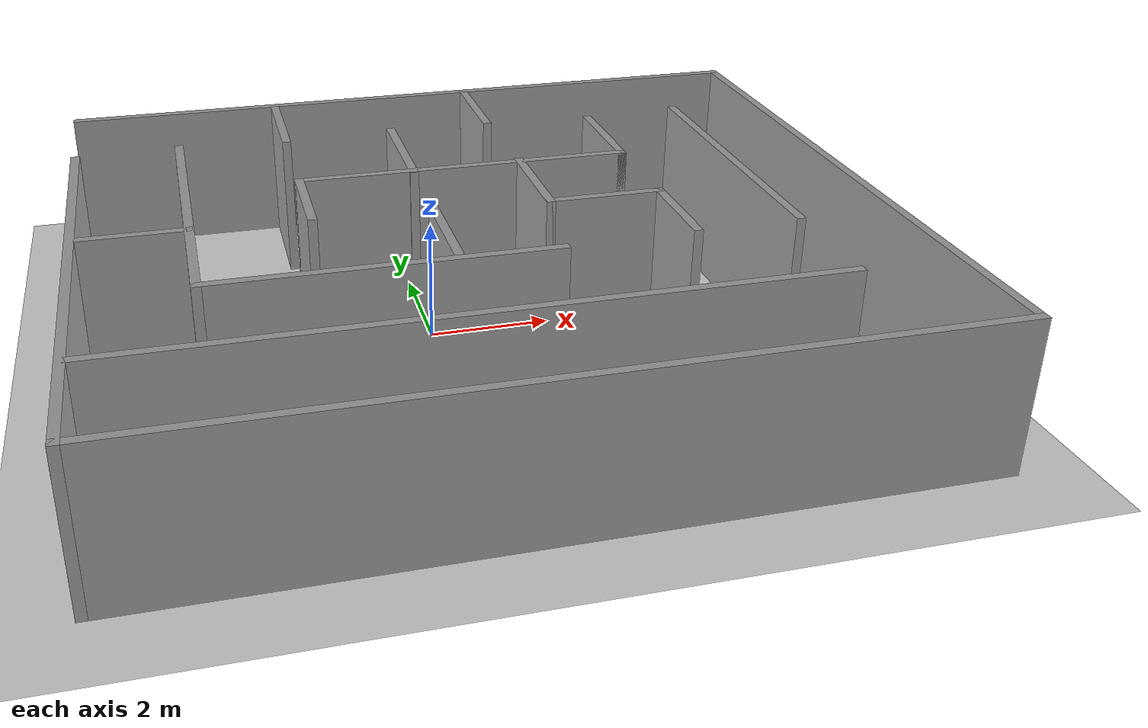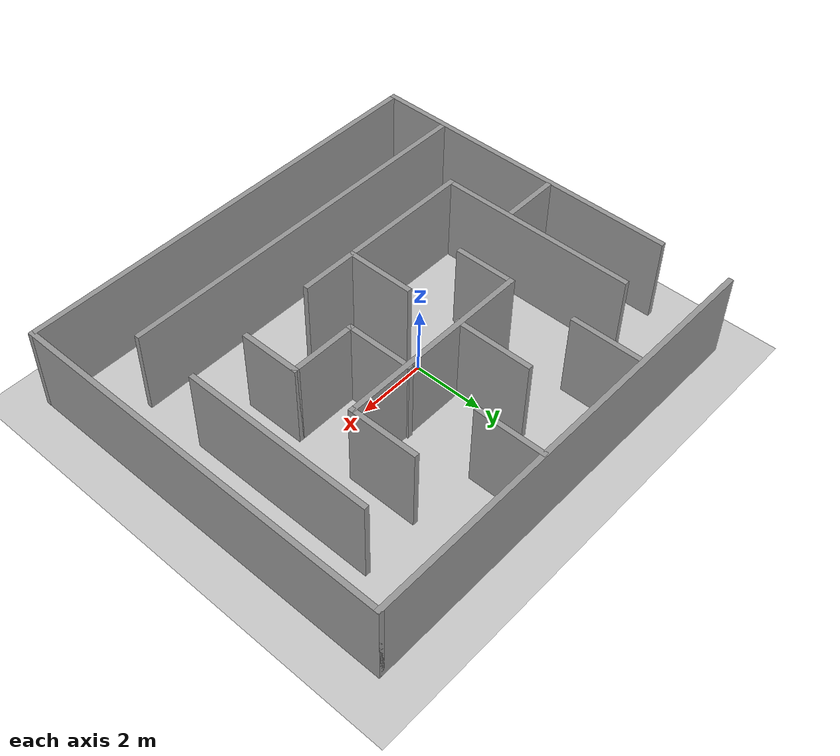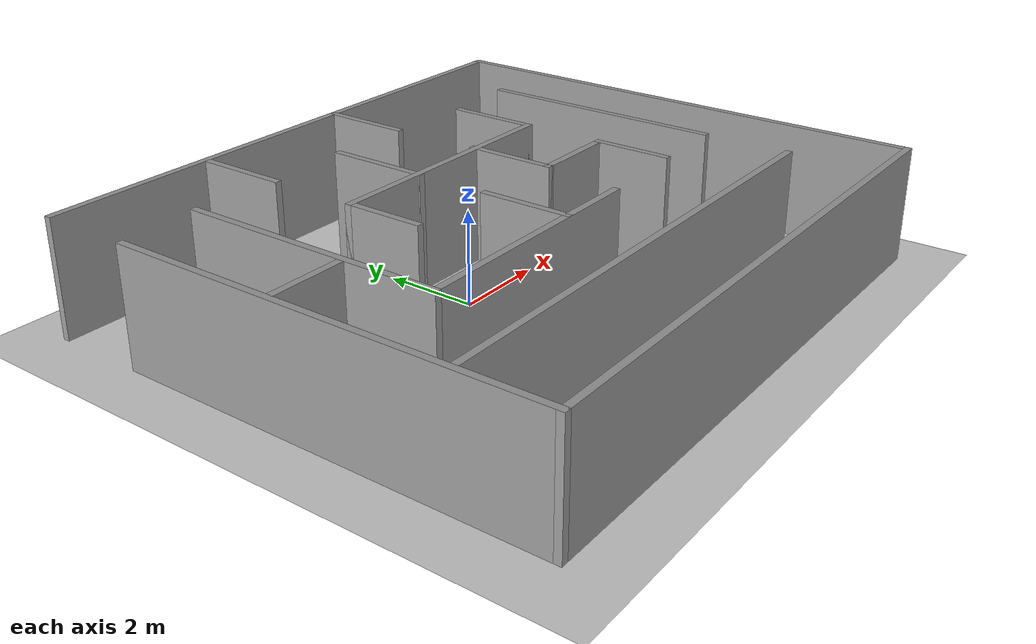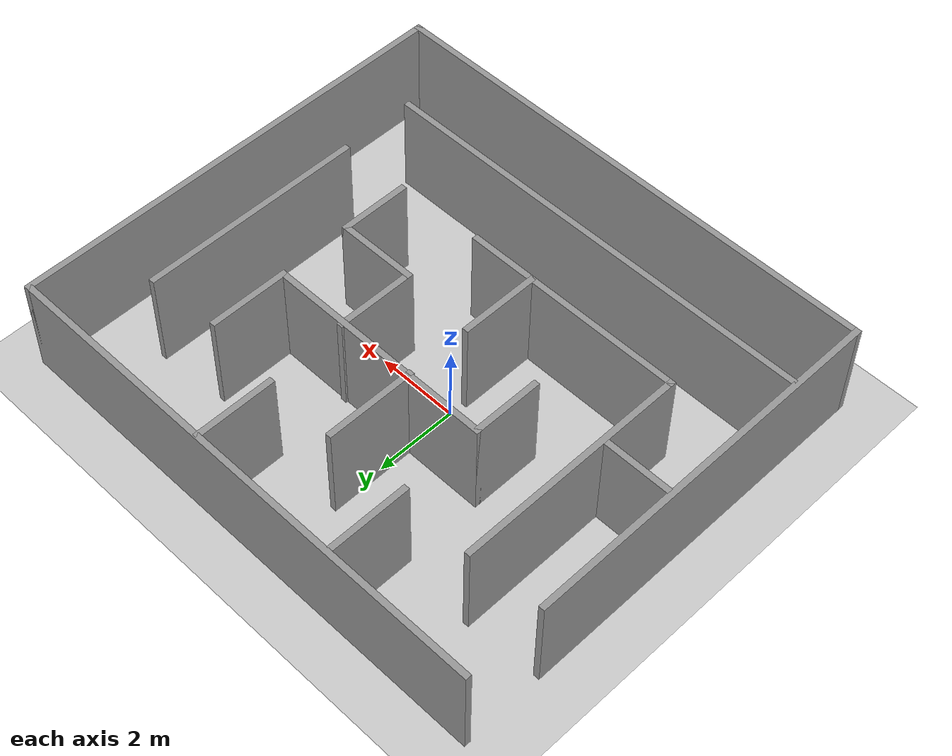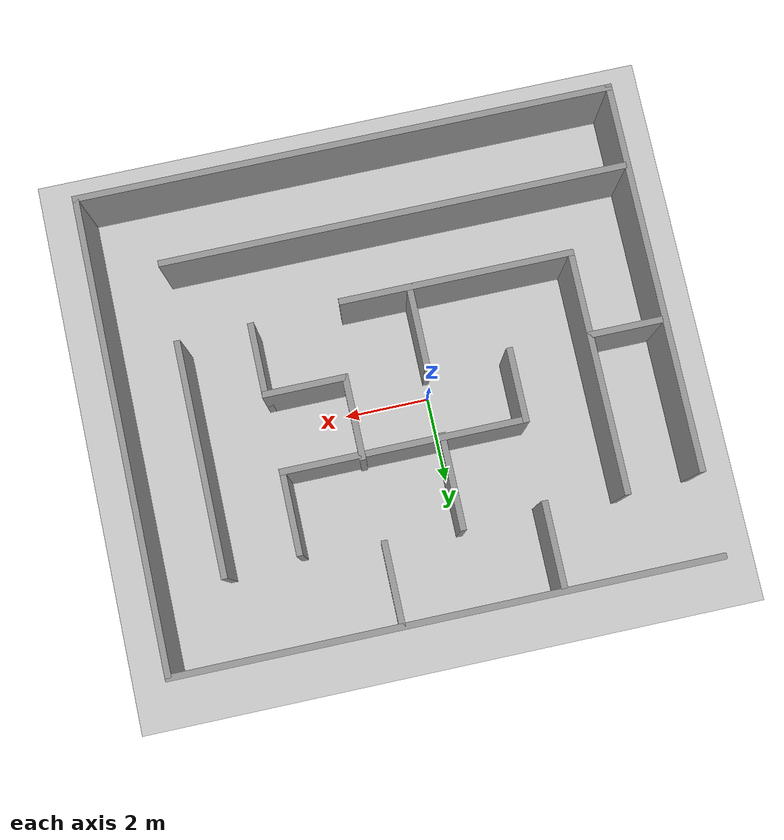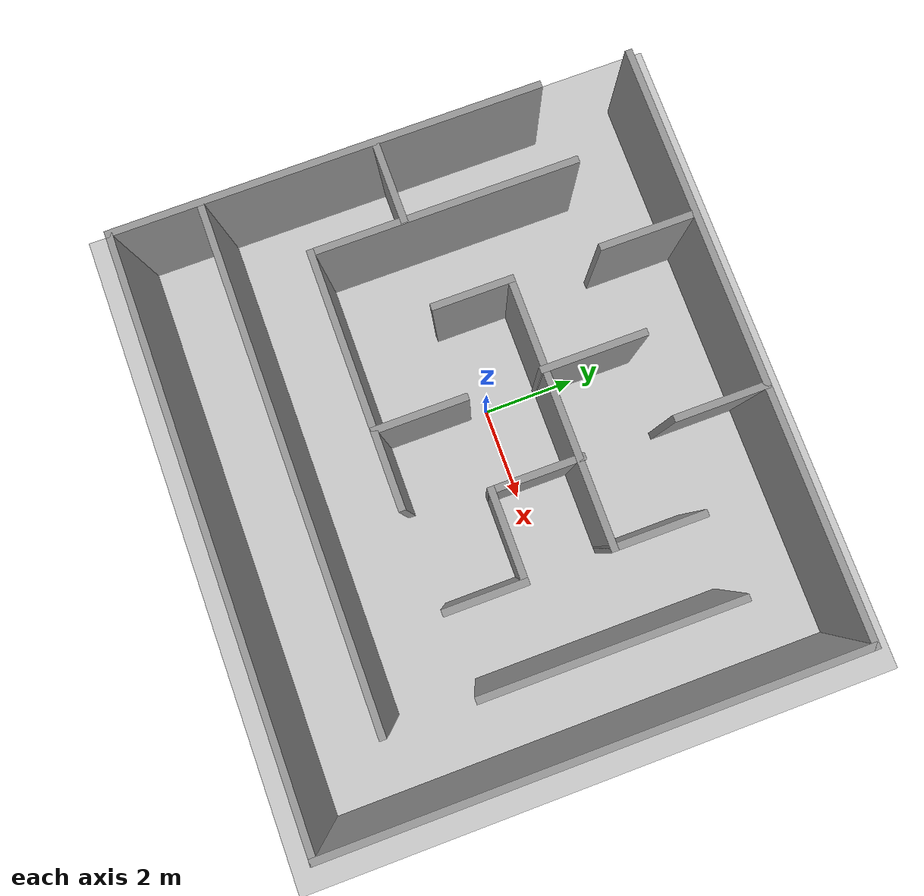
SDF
<sdf version="1.7">
 <world name="desafio_world">
  <physics name="4ms" type="ignored">
   <max_step_size>0.004</max_step_size>
   <real_time_factor>1.0</real_time_factor>
   <dart><collision_detector>bullet</collision_detector></dart>
  </physics>
  <plugin filename="gz-sim-physics-system" name="gz::sim::systems::Physics"/>
  <plugin filename="gz-sim-user-commands-system" name="gz::sim::systems::UserCommands"/>
  <plugin filename="gz-sim-scene-broadcaster-system" name="gz::sim::systems::SceneBroadcaster"/>
  <plugin filename="gz-sim-imu-system" name="gz::sim::systems::Imu"/>
  <plugin filename="gz-sim-sensors-system" name="gz::sim::systems::Sensors">
   <render_engine>ogre2</render_engine>
  </plugin>
  <light name="sun" type="directional">
   <pose>0 0 10 0 -0 0</pose>
   <diffuse>0.8 0.8 0.8 1</diffuse>
   <specular>0.2 0.2 0.2 1</specular>
   <attenuation>
    <range>1000</range>
    <constant>0.9</constant>
    <linear>0.01</linear>
    <quadratic>0.001</quadratic>
   </attenuation>
   <direction>-0.5 0.1 -0.9</direction>
   <spot><inner_angle>0</inner_angle><outer_angle>0</outer_angle><falloff>0</falloff></spot>
  </light>
  <model name="ground_plane">
   <static>1</static>
   <link name="link">
    <collision name="collision">
     <geometry><plane><normal>0 0 1</normal><size>100 100</size></plane></geometry>
     <surface><friction><ode><mu>100</mu><mu2>50</mu2></ode></friction></surface>
    </collision>
    <visual name="visual">
     <cast_shadows>0</cast_shadows>
     <geometry><plane><normal>0 0 1</normal><size>100 100</size></plane></geometry>
     <material>
      <ambient>0.8 0.8 0.8 1</ambient>
      <diffuse>0.8 0.8 0.8 1</diffuse>
      <specular>0.8 0.8 0.8 1</specular>
     </material>
    </visual>
   </link>
  </model>
  <include><uri>model://maze</uri></include>
  <gravity>0 0 -9.8</gravity>
  <magnetic_field>6e-06 2.3e-05 -4.2e-05</magnetic_field>
  <atmosphere type="adiabatic"/>
  <physics type="ode">
   <max_step_size>0.001</max_step_size>
   <real_time_factor>1</real_time_factor>
   <real_time_update_rate>1000</real_time_update_rate>
  </physics>
  <scene><ambient>0.4 0.4 0.4 1</ambient><background>0.7 0.7 0.7 1</background><shadows>1</shadows></scene>
  <spherical_coordinates>
   <surface_model>EARTH_WGS84</surface_model>
   <latitude_deg>0</latitude_deg>
   <longitude_deg>0</longitude_deg>
   <elevation>0</elevation>
   <heading_deg>0</heading_deg>
  </spherical_coordinates>
 </world>
</sdf>

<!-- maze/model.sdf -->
<sdf version='1.7'>
  <model name='maze'>
    <pose>0.736927 -0.393909 0 0 -0 0</pose>
    <link name='Wall_1'>
      <collision name='Wall_1_Collision'>
        <geometry>
          <box>
            <size>12.75 0.15 2.5</size>
          </box>
        </geometry>
        <pose>0 0 1.25 0 -0 0</pose>
      </collision>
      <visual name='Wall_1_Visual'>
        <pose>0 0 1.25 0 -0 0</pose>
        <geometry>
          <box>
            <size>12.75 0.15 2.5</size>
          </box>
        </geometry>
        <material>
          <script>
            <uri>file://media/materials/scripts/gazebo.material</uri>
            <name>Gazebo/Grey</name>
          </script>
          <ambient>1 1 1 1</ambient>
        </material>
        <meta>
          <layer>0</layer>
        </meta>
      </visual>
      <pose>0 5.55 0 0 -0 0</pose>
    </link>
    <link name='Wall_10'>
      <collision name='Wall_10_Collision'>
        <geometry>
          <box>
            <size>5.75 0.15 2.5</size>
          </box>
        </geometry>
        <pose>0 0 1.25 0 -0 0</pose>
      </collision>
      <visual name='Wall_10_Visual'>
        <pose>0 0 1.25 0 -0 0</pose>
        <geometry>
          <box>
            <size>5.75 0.15 2.5</size>
          </box>
        </geometry>
        <material>
          <script>
            <uri>file://media/materials/scripts/gazebo.material</uri>
            <name>Gazebo/Grey</name>
          </script>
          <ambient>1 1 1 1</ambient>
        </material>
        <meta>
          <layer>0</layer>
        </meta>
      </visual>
      <pose>-4.54439 0.887986 0 0 -0 -1.5708</pose>
    </link>
    <link name='Wall_11'>
      <collision name='Wall_11_Collision'>
        <geometry>
          <box>
            <size>5.5 0.15 2.5</size>
          </box>
        </geometry>
        <pose>0 0 1.25 0 -0 0</pose>
      </collision>
      <visual name='Wall_11_Visual'>
        <pose>0 0 1.25 0 -0 0</pose>
        <geometry>
          <box>
            <size>5.5 0.15 2.5</size>
          </box>
        </geometry>
        <material>
          <script>
            <uri>file://media/materials/scripts/gazebo.material</uri>
            <name>Gazebo/Grey</name>
          </script>
          <ambient>1 1 1 1</ambient>
        </material>
        <meta>
          <layer>0</layer>
        </meta>
      </visual>
      <pose>-1.86939 -1.91201 0 0 -0 0</pose>
    </link>
    <link name='Wall_13'>
      <collision name='Wall_13_Collision'>
        <geometry>
          <box>
            <size>2 0.15 2.5</size>
          </box>
        </geometry>
        <pose>0 0 1.25 0 -0 0</pose>
      </collision>
      <visual name='Wall_13_Visual'>
        <pose>0 0 1.25 0 -0 0</pose>
        <geometry>
          <box>
            <size>2 0.15 2.5</size>
          </box>
        </geometry>
        <material>
          <script>
            <uri>file://media/materials/scripts/gazebo.material</uri>
            <name>Gazebo/Grey</name>
          </script>
          <ambient>1 1 1 1</ambient>
        </material>
        <meta>
          <layer>0</layer>
        </meta>
      </visual>
      <pose>-0.767159 -0.973055 0 0 -0 1.5708</pose>
    </link>
    <link name='Wall_15'>
      <collision name='Wall_15_Collision'>
        <geometry>
          <box>
            <size>1.75 0.15 2.5</size>
          </box>
        </geometry>
        <pose>0 0 1.25 0 -0 0</pose>
      </collision>
      <visual name='Wall_15_Visual'>
        <pose>0 0 1.25 0 -0 0</pose>
        <geometry>
          <box>
            <size>1.75 0.15 2.5</size>
          </box>
        </geometry>
        <material>
          <script>
            <uri>file://media/materials/scripts/gazebo.material</uri>
            <name>Gazebo/Grey</name>
          </script>
          <ambient>1 1 1 1</ambient>
        </material>
        <meta>
          <layer>0</layer>
        </meta>
      </visual>
      <pose>-2.68237 0.817159 0 0 -0 1.5708</pose>
    </link>
    <link name='Wall_16'>
      <collision name='Wall_16_Collision'>
        <geometry>
          <box>
            <size>5.75 0.15 2.5</size>
          </box>
        </geometry>
        <pose>0 0 1.25 0 -0 0</pose>
      </collision>
      <visual name='Wall_16_Visual'>
        <pose>0 0 1.25 0 -0 0</pose>
        <geometry>
          <box>
            <size>5.75 0.15 2.5</size>
          </box>
        </geometry>
        <material>
          <script>
            <uri>file://media/materials/scripts/gazebo.material</uri>
            <name>Gazebo/Grey</name>
          </script>
          <ambient>1 1 1 1</ambient>
        </material>
        <meta>
          <layer>0</layer>
        </meta>
      </visual>
      <pose>0.117627 1.61716 0 0 -0 0</pose>
    </link>
    <link name='Wall_17'>
      <collision name='Wall_17_Collision'>
        <geometry>
          <box>
            <size>2 0.15 2.5</size>
          </box>
        </geometry>
        <pose>0 0 1.25 0 -0 0</pose>
      </collision>
      <visual name='Wall_17_Visual'>
        <pose>0 0 1.25 0 -0 0</pose>
        <geometry>
          <box>
            <size>2 0.15 2.5</size>
          </box>
        </geometry>
        <material>
          <script>
            <uri>file://media/materials/scripts/gazebo.material</uri>
            <name>Gazebo/Grey</name>
          </script>
          <ambient>1 1 1 1</ambient>
        </material>
        <meta>
          <layer>0</layer>
        </meta>
      </visual>
      <pose>2.91763 2.54216 0 0 -0 1.5708</pose>
    </link>
    <link name='Wall_19'>
      <collision name='Wall_19_Collision'>
        <geometry>
          <box>
            <size>2.25 0.15 2.5</size>
          </box>
        </geometry>
        <pose>0 0 1.25 0 -0 0</pose>
      </collision>
      <visual name='Wall_19_Visual'>
        <pose>0 0 1.25 0 -0 0</pose>
        <geometry>
          <box>
            <size>2.25 0.15 2.5</size>
          </box>
        </geometry>
        <material>
          <script>
            <uri>file://media/materials/scripts/gazebo.material</uri>
            <name>Gazebo/Grey</name>
          </script>
          <ambient>1 1 1 1</ambient>
        </material>
        <meta>
          <layer>0</layer>
        </meta>
      </visual>
      <pose>-0.767159 2.63657 0 0 -0 1.5708</pose>
    </link>
    <link name='Wall_2'>
      <collision name='Wall_2_Collision'>
        <geometry>
          <box>
            <size>11.25 0.15 2.5</size>
          </box>
        </geometry>
        <pose>0 0 1.25 0 -0 0</pose>
      </collision>
      <visual name='Wall_2_Visual'>
        <pose>0 0 1.25 0 -0 0</pose>
        <geometry>
          <box>
            <size>11.25 0.15 2.5</size>
          </box>
        </geometry>
        <material>
          <script>
            <uri>file://media/materials/scripts/gazebo.material</uri>
            <name>Gazebo/Grey</name>
          </script>
          <ambient>1 1 1 1</ambient>
        </material>
        <meta>
          <layer>0</layer>
        </meta>
      </visual>
      <pose>6.3 0 0 0 -0 -1.5708</pose>
    </link>
    <link name='Wall_21'>
      <collision name='Wall_21_Collision'>
        <geometry>
          <box>
            <size>2 0.15 2.5</size>
          </box>
        </geometry>
        <pose>0 0 1.25 0 -0 0</pose>
      </collision>
      <visual name='Wall_21_Visual'>
        <pose>0 0 1.25 0 -0 0</pose>
        <geometry>
          <box>
            <size>2 0.15 2.5</size>
          </box>
        </geometry>
        <material>
          <script>
            <uri>file://media/materials/scripts/gazebo.material</uri>
            <name>Gazebo/Grey</name>
          </script>
          <ambient>1 1 1 1</ambient>
        </material>
        <meta>
          <layer>0</layer>
        </meta>
      </visual>
      <pose>1.09485 0.741371 0 0 -0 -1.5708</pose>
    </link>
    <link name='Wall_22'>
      <collision name='Wall_22_Collision'>
        <geometry>
          <box>
            <size>2 0.15 2.5</size>
          </box>
        </geometry>
        <pose>0 0 1.25 0 -0 0</pose>
      </collision>
      <visual name='Wall_22_Visual'>
        <pose>0 0 1.25 0 -0 0</pose>
        <geometry>
          <box>
            <size>2 0.15 2.5</size>
          </box>
        </geometry>
        <material>
          <script>
            <uri>file://media/materials/scripts/gazebo.material</uri>
            <name>Gazebo/Grey</name>
          </script>
          <ambient>1 1 1 1</ambient>
        </material>
        <meta>
          <layer>0</layer>
        </meta>
      </visual>
      <pose>2.01986 -0.183629 0 0 -0 0</pose>
    </link>
    <link name='Wall_23'>
      <collision name='Wall_23_Collision'>
        <geometry>
          <box>
            <size>1.75 0.15 2.5</size>
          </box>
        </geometry>
        <pose>0 0 1.25 0 -0 0</pose>
      </collision>
      <visual name='Wall_23_Visual'>
        <pose>0 0 1.25 0 -0 0</pose>
        <geometry>
          <box>
            <size>1.75 0.15 2.5</size>
          </box>
        </geometry>
        <material>
          <script>
            <uri>file://media/materials/scripts/gazebo.material</uri>
            <name>Gazebo/Grey</name>
          </script>
          <ambient>1 1 1 1</ambient>
        </material>
        <meta>
          <layer>0</layer>
        </meta>
      </visual>
      <pose>2.94486 -0.983629 0 0 -0 -1.5708</pose>
    </link>
    <link name='Wall_25'>
      <collision name='Wall_25_Collision'>
        <geometry>
          <box>
            <size>11 0.15 2.5</size>
          </box>
        </geometry>
        <pose>0 0 1.25 0 -0 0</pose>
      </collision>
      <visual name='Wall_25_Visual'>
        <pose>0 0 1.25 0 -0 0</pose>
        <geometry>
          <box>
            <size>11 0.15 2.5</size>
          </box>
        </geometry>
        <material>
          <script>
            <uri>file://media/materials/scripts/gazebo.material</uri>
            <name>Gazebo/Grey</name>
          </script>
          <ambient>1 1 1 1</ambient>
        </material>
        <meta>
          <layer>0</layer>
        </meta>
      </visual>
      <pose>-0.768599 -3.65367 0 0 -0 0</pose>
    </link>
    <link name='Wall_27'>
      <collision name='Wall_27_Collision'>
        <geometry>
          <box>
            <size>1.75 0.15 2.5</size>
          </box>
        </geometry>
        <pose>0 0 1.25 0 -0 0</pose>
      </collision>
      <visual name='Wall_27_Visual'>
        <pose>0 0 1.25 0 -0 0</pose>
        <geometry>
          <box>
            <size>1.75 0.15 2.5</size>
          </box>
        </geometry>
        <material>
          <script>
            <uri>file://media/materials/scripts/gazebo.material</uri>
            <name>Gazebo/Grey</name>
          </script>
          <ambient>1 1 1 1</ambient>
        </material>
        <meta>
          <layer>0</layer>
        </meta>
      </visual>
      <pose>-5.367 0.043759 0 0 -0 0</pose>
    </link>
    <link name='Wall_29'>
      <collision name='Wall_29_Collision'>
        <geometry>
          <box>
            <size>5.5 0.15 2.5</size>
          </box>
        </geometry>
        <pose>0 0 1.25 0 -0 0</pose>
      </collision>
      <visual name='Wall_29_Visual'>
        <pose>0 0 1.25 0 -0 0</pose>
        <geometry>
          <box>
            <size>5.5 0.15 2.5</size>
          </box>
        </geometry>
        <material>
          <script>
            <uri>file://media/materials/scripts/gazebo.material</uri>
            <name>Gazebo/Grey</name>
          </script>
          <ambient>1 1 1 1</ambient>
        </material>
        <meta>
          <layer>0</layer>
        </meta>
      </visual>
      <pose>4.65928 0.936546 0 0 -0 1.5708</pose>
    </link>
    <link name='Wall_3'>
      <collision name='Wall_3_Collision'>
        <geometry>
          <box>
            <size>12.75 0.15 2.5</size>
          </box>
        </geometry>
        <pose>0 0 1.25 0 -0 0</pose>
      </collision>
      <visual name='Wall_3_Visual'>
        <pose>0 0 1.25 0 -0 0</pose>
        <geometry>
          <box>
            <size>12.75 0.15 2.5</size>
          </box>
        </geometry>
        <material>
          <script>
            <uri>file://media/materials/scripts/gazebo.material</uri>
            <name>Gazebo/Grey</name>
          </script>
          <ambient>1 1 1 1</ambient>
        </material>
        <meta>
          <layer>0</layer>
        </meta>
      </visual>
      <pose>0 -5.55 0 0 -0 3.14159</pose>
    </link>
    <link name='Wall_4'>
      <collision name='Wall_4_Collision'>
        <geometry>
          <box>
            <size>9.25 0.15 2.5</size>
          </box>
        </geometry>
        <pose>0 0 1.25 0 -0 0</pose>
      </collision>
      <visual name='Wall_4_Visual'>
        <pose>0 0 1.25 0 -0 0</pose>
        <geometry>
          <box>
            <size>9.25 0.15 2.5</size>
          </box>
        </geometry>
        <material>
          <script>
            <uri>file://media/materials/scripts/gazebo.material</uri>
            <name>Gazebo/Grey</name>
          </script>
          <ambient>1 1 1 1</ambient>
        </material>
        <meta>
          <layer>0</layer>
        </meta>
      </visual>
      <pose>-6.3 -1 0 0 -0 1.5708</pose>
    </link>
    <link name='Wall_6'>
      <collision name='Wall_6_Collision'>
        <geometry>
          <box>
            <size>2 0.15 2.5</size>
          </box>
        </geometry>
        <pose>0 0 1.25 0 -0 0</pose>
      </collision>
      <visual name='Wall_6_Visual'>
        <pose>0 0 1.25 0 -0 0</pose>
        <geometry>
          <box>
            <size>2 0.15 2.5</size>
          </box>
        </geometry>
        <material>
          <script>
            <uri>file://media/materials/scripts/gazebo.material</uri>
            <name>Gazebo/Grey</name>
          </script>
          <ambient>1 1 1 1</ambient>
        </material>
        <meta>
          <layer>0</layer>
        </meta>
      </visual>
      <pose>-2.68237 4.492 0 0 -0 -1.5708</pose>
    </link>
    <link name='Wall_8'>
      <collision name='Wall_8_Collision'>
        <geometry>
          <box>
            <size>2 0.15 2.5</size>
          </box>
        </geometry>
        <pose>0 0 1.25 0 -0 0</pose>
      </collision>
      <visual name='Wall_8_Visual'>
        <pose>0 0 1.25 0 -0 0</pose>
        <geometry>
          <box>
            <size>2 0.15 2.5</size>
          </box>
        </geometry>
        <material>
          <script>
            <uri>file://media/materials/scripts/gazebo.material</uri>
            <name>Gazebo/Grey</name>
          </script>
          <ambient>1 1 1 1</ambient>
        </material>
        <meta>
          <layer>0</layer>
        </meta>
      </visual>
      <pose>1.01506 4.5984 0 0 -0 -1.5708</pose>
    </link>
    <static>1</static>
  </model>
</sdf>
